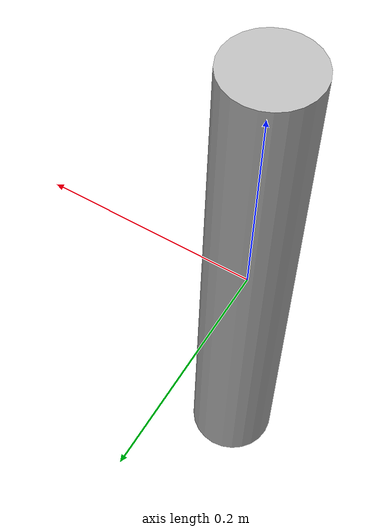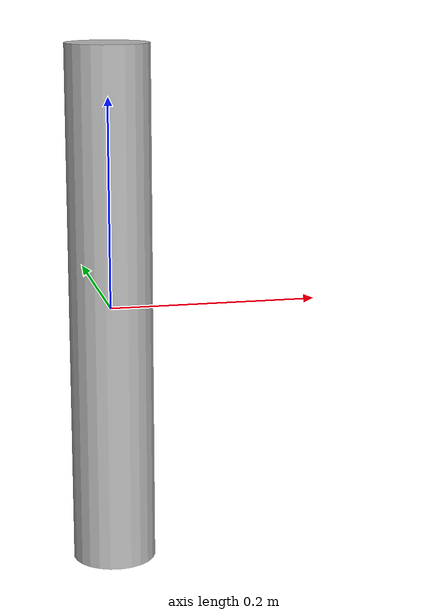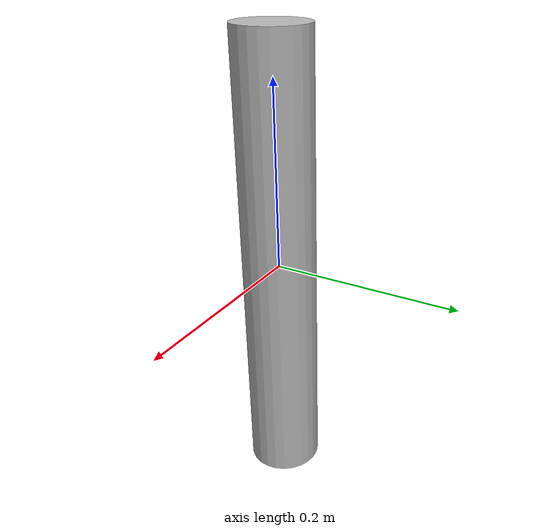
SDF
<?xml version="1.0" ?>
<sdf version="1.5">
  <model name="border_cylinder">
    <link name="link">
      <inertial>
        <pose>0 0 0 0 0 0</pose>
        <mass>0.390</mass>
        <inertia>
          <ixx>0.00055575</ixx>
          <ixy>0</ixy>
          <ixz>0</ixz>
          <iyy>0.00055575</iyy>
          <iyz>0</iyz>
          <izz>0.0001755</izz>
        </inertia>
      </inertial>
      <collision name="collision">
          <geometry>
            <cylinder>
              <radius>0.04</radius>
              <length>0.5</length>
            </cylinder>
          </geometry>
        <surface>
          <friction>
            <ode>
              <mu>1.0</mu>
              <mu2>1.0</mu2>
            </ode>
          </friction>
          <contact>
            <ode>
              <kp>10000000.0</kp>
              <kd>1.0</kd>
              <min_depth>0.001</min_depth>
              <max_vel>0.1</max_vel>
            </ode>
          </contact>
        </surface>
      </collision>
      <visual name="visual">
          <geometry>
            <cylinder>
              <radius>0.04</radius>
              <length>0.5</length>
            </cylinder>
          </geometry>
      </visual>
    </link>
  </model>
</sdf>
